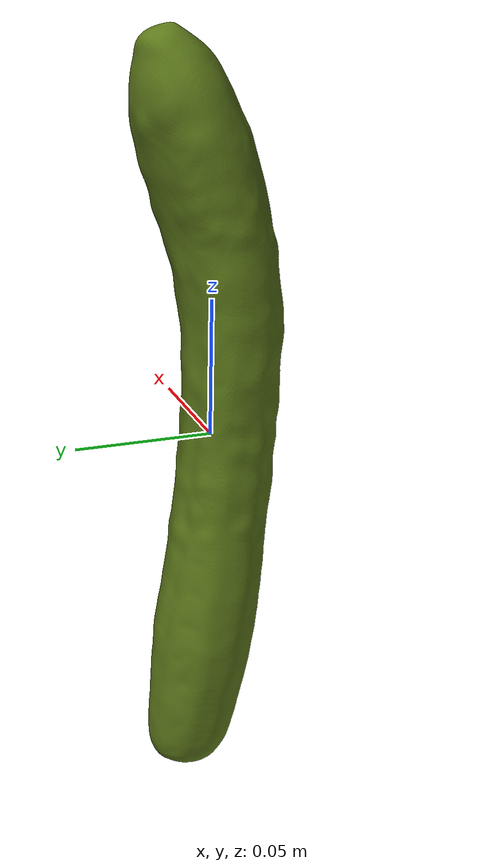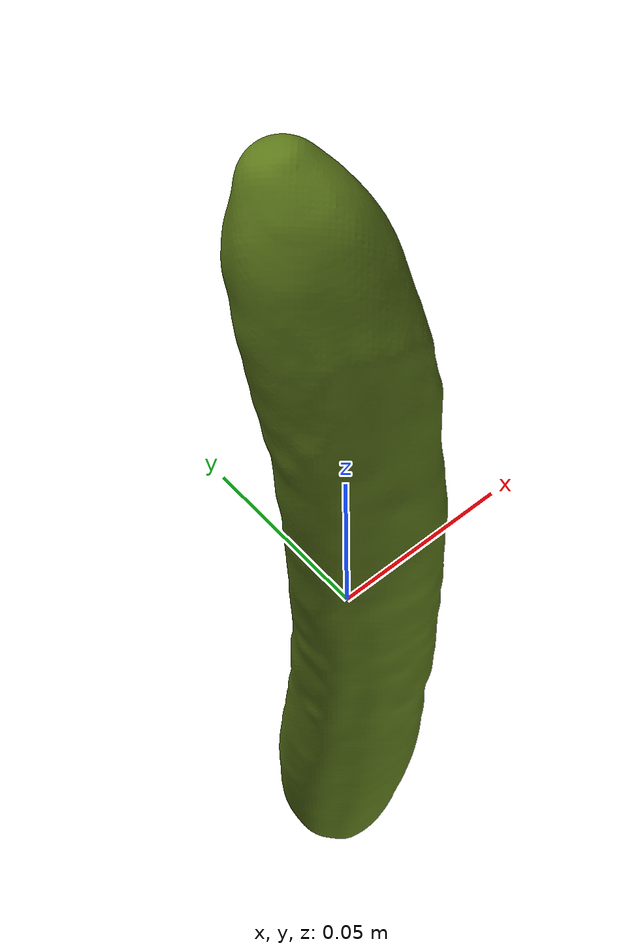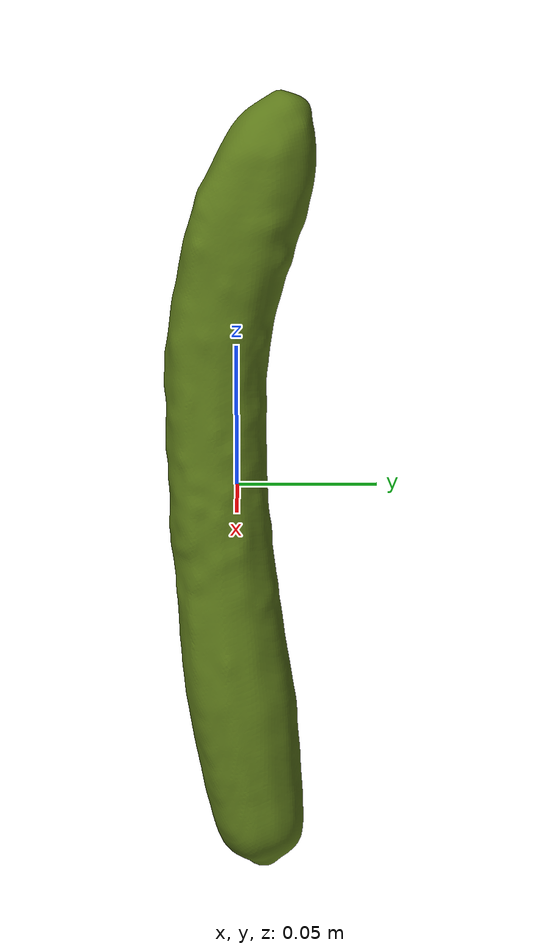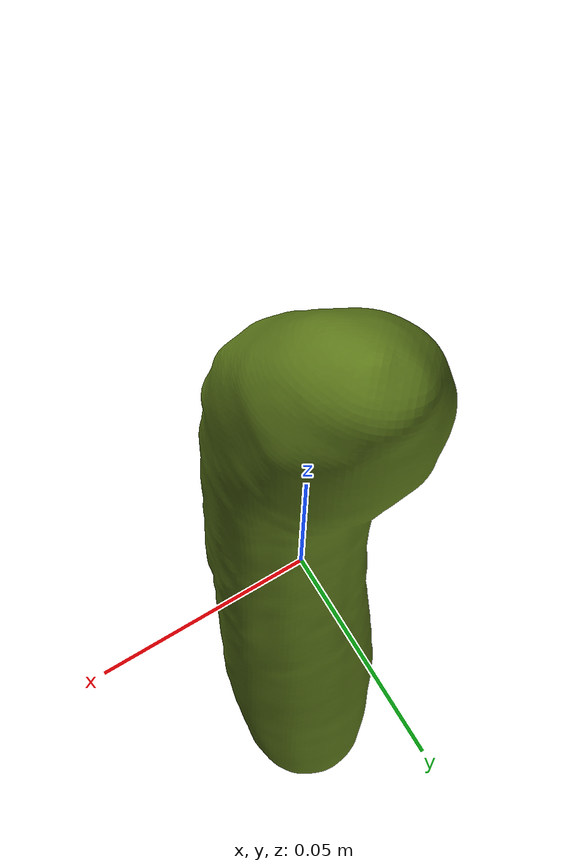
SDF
<sdf version="1.7">
  <model name="Cucumber">
    <link name="base_link">
      <inertial>
        <mass>0.18</mass>
        <inertia>
          <ixx>1.238e-03</ixx>
          <ixy>0.000e+00</ixy>
          <ixz>0.000e+00</ixz>
          <iyy>1.216e-03</iyy>
          <iyz>0.000e+00</iyz>
          <izz>6.553e-05</izz>
        </inertia>
      </inertial>
      <visual name="Cucumber_visual">
        <geometry>
          <mesh>
            <scale>1 1 1</scale>
            <uri>Cucumber_processed.obj</uri>
          </mesh>
        </geometry>
        <material>
          <diffuse>0.36 0.47 0.098 1.0</diffuse>
        </material>
      </visual>
      <collision name="Cucumber_collision">
        <geometry>
          <mesh>
            <scale>1 1 1</scale>
            <uri>Cucumber_processed.obj</uri>
          </mesh>
        </geometry>
      </collision>
    </link>
  </model>
</sdf>
